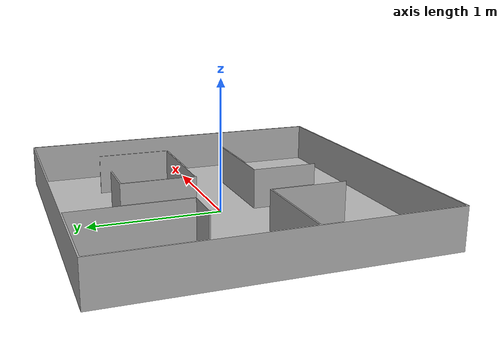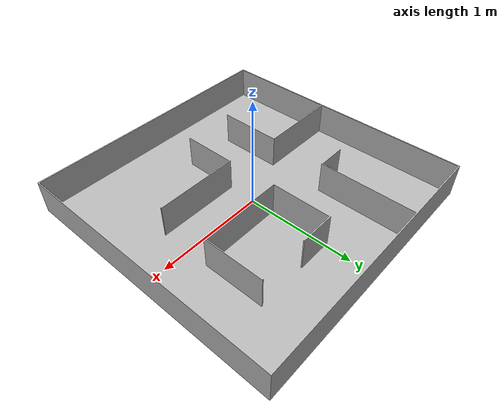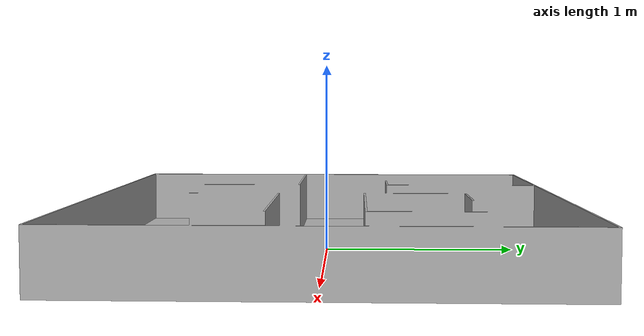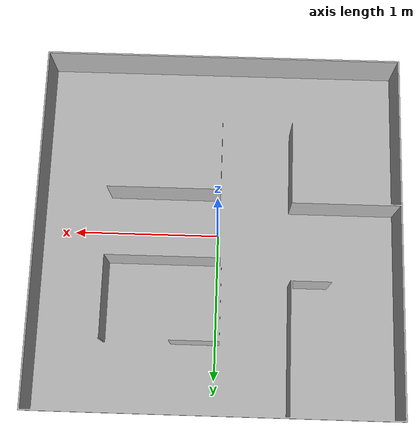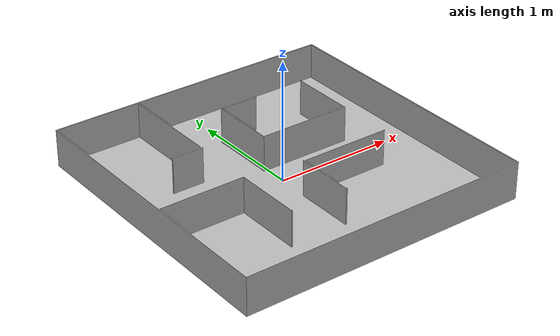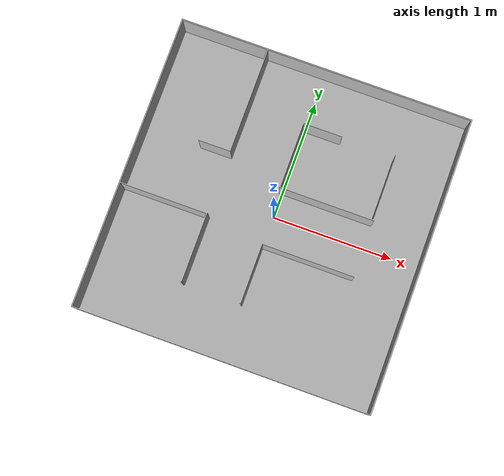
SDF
<?xml version='1.0'?>
<sdf version='1.5'>
  <!-- The Maze Model -->
  <model name="maze_model">
    <static>true</static>
    <pose>0 0 0 0 0 0</pose>

    <link name="maze_link">
      <!-- Collision element for physics interaction -->
      <collision name="maze_collision">
        <geometry>
          <mesh>
            <!--
              Update 'file://maze.stl' to the correct path to your STL file.
              For example, if maze.stl is in the same folder, this should work.
            -->
            <uri>model://maze/maze.stl</uri>
            <scale>0.001 0.001 0.001</scale>
          </mesh>
        </geometry>
      </collision>

      <!-- Visual element for rendering -->
      <visual name="maze_visual">
        <geometry>
          <mesh>
            <uri>model://maze/maze.stl</uri>
            <scale>0.001 0.001 0.001</scale>
          </mesh>
        </geometry>
      </visual>
    </link>
  </model>
</sdf>
